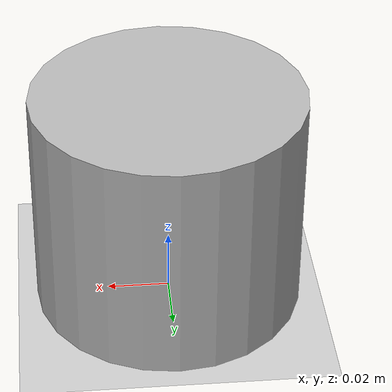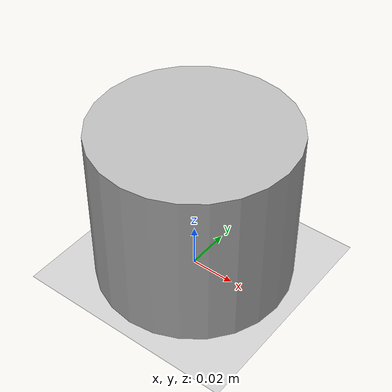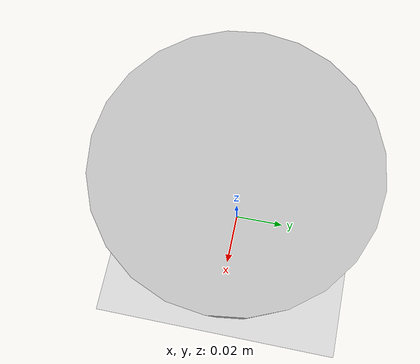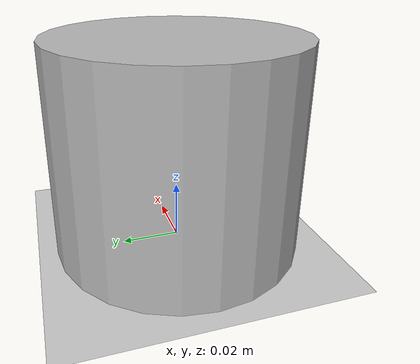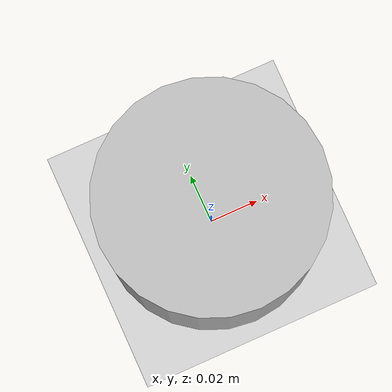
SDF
<?xml version="1.0" ?>
<sdf version="1.5">
  <world name="default">
    <!-- A global light source -->
    <include>
      <uri>model://sun</uri>
    </include>

    <!-- A ground plane -->
    <include>
      <uri>model://ground_plane</uri>
    </include>

    <model name="os-0-32">
      <!-- Give the base link a unique name -->
      <link name="os0_lidar">

        <pose>0 0 0.0365 0 0 0</pose>

        <inertial>
          <mass>0.5</mass>
          <inertia>
            <ixx>0.000466</ixx>
            <iyy>0.000466</iyy>
            <izz>0.0007993125</izz>
            <ixy>0</ixy>
            <ixz>0</ixz>
            <iyz>0</iyz>
          </inertia>
        </inertial>

        <collision name="base_collision">
          <geometry>
            <cylinder>
              <radius>0.0435</radius>
              <length>0.0742</length>
            </cylinder>
          </geometry>
        </collision>

        <!-- The visual is mostly a copy of the collision -->
        <visual name="base_visual">
          <geometry>

            <cylinder>
              <radius>0.0435</radius>
              <length>0.0742</length>
            </cylinder>

          </geometry>
        </visual>
      </link>
    </model>
  </world>
</sdf>
